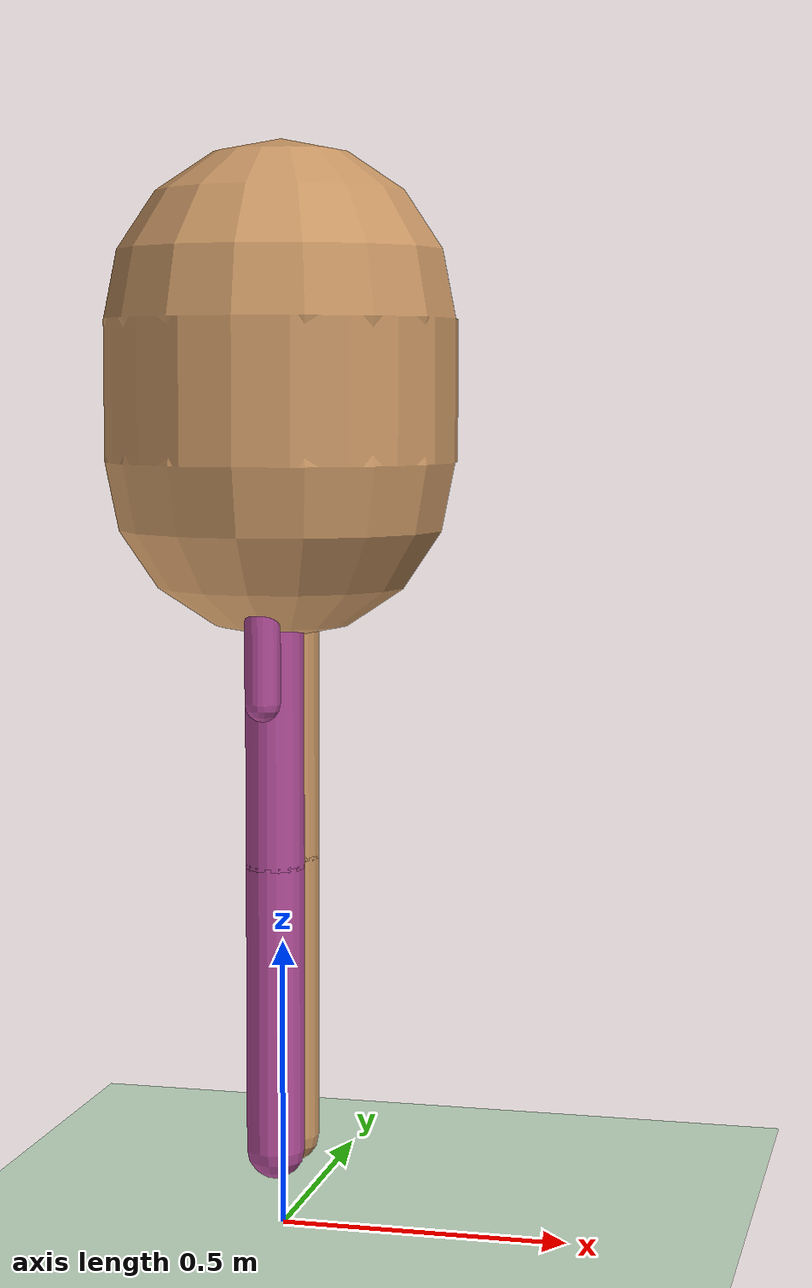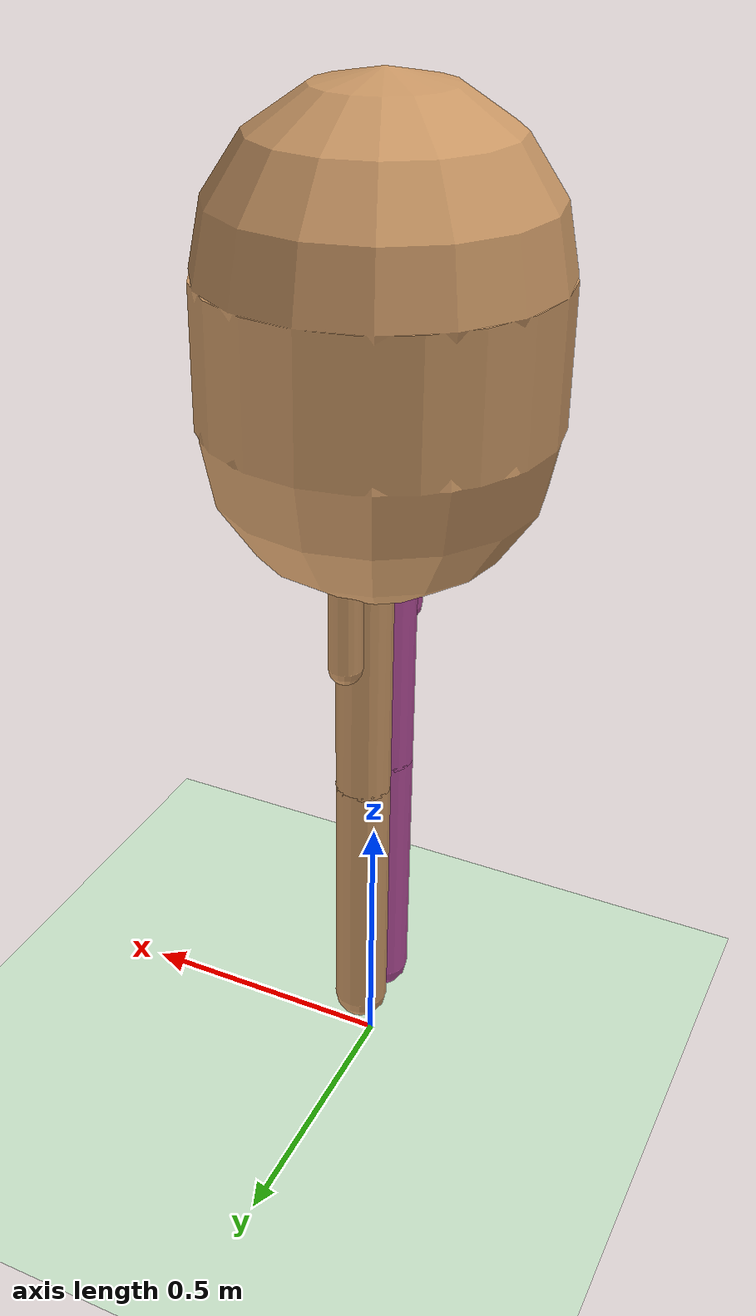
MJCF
<mujoco model="humanoid_2d">
  <compiler angle="radian" inertiafromgeom="true"/>
  <default>
    <position kp="21.10" ctrlrange="-0.57 5.7" forcerange="-150 150"/>
    <joint armature="0.045" damping="1.084" limited="true" frictionloss="0.03"/> <geom conaffinity="0" condim="3" contype="1" density="100" rgba="0.8 0.6 .4 1"/>
  </default>
  <option integrator="RK4" timestep="0.002" gravity="0 0 -9.81"/>

  <worldbody>
    <light cutoff="100" diffuse="1 1 1" dir="-0 0 -1.3" directional="true" exponent="1" pos="0 0 1.3" specular=".1 .1 .1"/>
    <geom conaffinity="1" condim="3" name="floor" pos="0 0 0" rgba="0.8 0.9 0.8 1" size="40 40 40" type="plane" material="MatPlane"/>
    <camera name="track_com" mode="trackcom" pos="0 -1.5 -0.25" fovy="25" xyaxes="1 0 0 0 0 1"/>

    <body name="torso" pos="0 0 1.33">
      <joint armature="0" axis="1 0 0" damping="0" limited="false" name="rootx" pos="0 0 0" stiffness="0" type="slide"/>
      <joint armature="0" axis="0 0 1" damping="0" limited="false" name="rootz" pos="0 0 0" stiffness="0" type="slide"/>
      <joint armature="0" axis="0 1 0" damping="0" limited="false" name="rooty" pos="0 0 0" stiffness="0" type="hinge"/>

      <geom friction="0.9" name="lower_torso_geom" size="0.05 0.07" pos="0 0 -0.17" type="capsule"/>

      <body name="thigh" pos="0 0.05 -0.24">
        <joint axis="0 1 0" name="thigh_joint" range="-3 3.5" pos="0 0 0" type="hinge"/>
        <geom friction="0.9" pos="0 0 -0.225" name="thigh_geom" size="0.05 0.225" type="capsule"/>
        <body name="shin" pos="0 0 -0.695">
          <joint axis="0 1 0" name="shin_joint" pos="0 0 0.25" range="-0.57 5.7" type="hinge"/>
          <geom friction="0.9" name="shin_geom" size="0.05 0.25" type="capsule"/>
        </body>
      </body>

      <body name="thigh_left" pos="0 -0.05 -0.24">
        <joint axis="0 1 0" name="thigh_left_joint" pos="0 0 0" range="-3 3.5" type="hinge"/>
        <geom friction="0.9" name="thigh_left_geom" rgba=".7 .3 .6 1" size="0.05 0.225" pos="0 0 -0.225" type="capsule"/>
        <body name="shin_left" pos="0 0 -0.695">
          <joint axis="0 1 0" name="shin_left_joint" pos="0 0 0.25" range="-0.57 5.7" type="hinge"/>
          <geom friction="0.9" name="shin_left_geom" rgba=".7 .3 .6 1" size="0.05 0.25" type="capsule"/>
        </body>
      </body>

      <body name="upper_torso" pos="0 0 0.12">
        <joint axis="0 1 0" name="waist_joint" pos="0 0 -0.17" range="0 1.57" type="hinge"/>
        <geom friction="0.9" name="upper_torso_geom" size="0.3 0.12" pos="0 0 0" type="capsule"/>

        <geom name="head" pos="0 0 0.24" size="0.08" type="sphere" rgba="1 0 0 1"/>

        <body name="upper_arm" pos="0 0.125 0.12">
          <joint axis="0 1 0" name="arm_joint" pos="0 0 0" range="-2.5 5" type="hinge"/>
          <geom friction="0.9" name="uarm_geom" pos="0 0 -0.15" size="0.04 0.15" type="capsule"/>
          <body name="lower_arm" pos="0 0 -0.49">
            <joint axis="0 1 0" name="forearm_joint" pos="0 0 0.19" range="-0.57 5.7"  type="hinge"/>
            <geom friction="0.9" name="larm_geom" pos="0 0 0.0" size="0.03 0.15" type="capsule"/>
          </body>
        </body>

        <body name="upper_arm_left" pos="0 -0.125 0.12">
          <joint axis="0 1 0" name="arm_left_joint" pos="0 0 0" range="-2.5 5" type="hinge"/>
          <geom friction="0.9" name="uarm_left_geom" pos="0 0 -0.15" rgba=".7 .3 .6 1" size="0.04 0.15" type="capsule"/>
          <body name="lower_arm_left" pos="0 0 -0.49">
            <joint axis="0 1 0" name="forearm_left_joint" pos="0 0 0.19" range="-0.57 5.7"   type="hinge"/>
            <geom friction="0.9" name="larm_left_geom" pos="0 0 -0.0" rgba=".7 .3 .6 1" size="0.03 0.15" type="capsule"/>
          </body>
        </body>
      </body>

    </body>
  </worldbody>

  <actuator>
    <position joint="waist_joint" name="pos_waist" ctrlrange="0 1.57"/>

    <position joint="thigh_joint" name="pos_thigh" ctrlrange="-3 3.5"/>
    <position joint="shin_joint" name="pos_shin" ctrlrange="-0.57 5.7"/>

    <position joint="thigh_left_joint" name="pos_thigh_left" ctrlrange="-3 3.5"/>
    <position joint="shin_left_joint" name="pos_shin_left" ctrlrange="-0.57 5.7"/>

    <position joint="arm_joint" name="pos_arm" ctrlrange="-2.5 5"/>
    <position joint="forearm_joint" name="pos_forearm" ctrlrange="-0.57 5.7"/>

    <position joint="arm_left_joint" name="pos_arm_left" ctrlrange="-2.5 5"/>
    <position joint="forearm_left_joint" name="pos_forearm_left" ctrlrange="-0.57 5.7"/>
  </actuator>

  <asset>
    <texture type="skybox" builtin="gradient" rgb1=".4 .5 .6" rgb2="0 0 0" width="100" height="100"/>
    <texture builtin="flat" height="1278" mark="cross" markrgb="1 1 1" name="texgeom" random="0.01" rgb1="0.8 0.6 0.4" rgb2="0.8 0.6 0.4" type="cube" width="127"/>
    <texture builtin="checker" height="100" name="texplane" rgb1="0 0 0" rgb2="0.8 0.8 0.8" type="2d" width="100"/>
    <material name="MatPlane" reflectance="0.5" shininess="1" specular="1" texrepeat="60 60" texture="texplane"/>
    <material name="geom" texture="texgeom" texuniform="true"/>
  </asset>
</mujoco>
